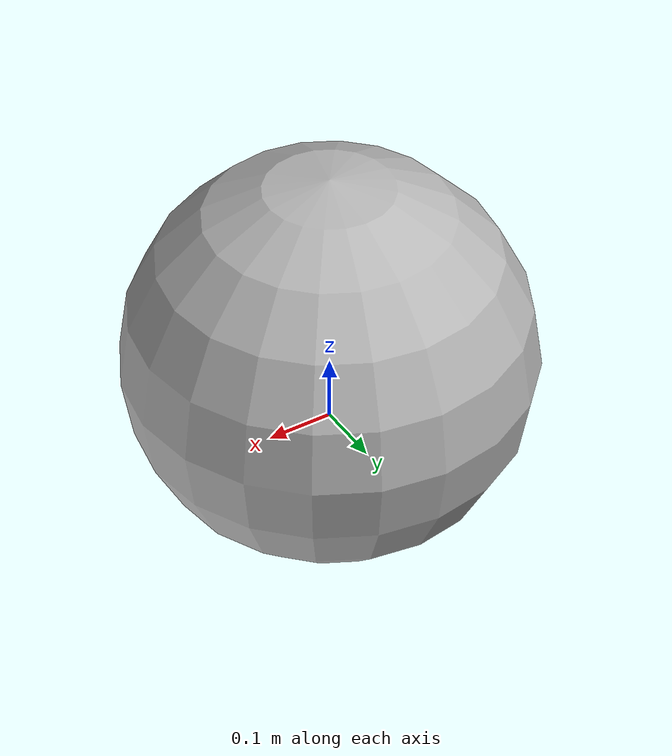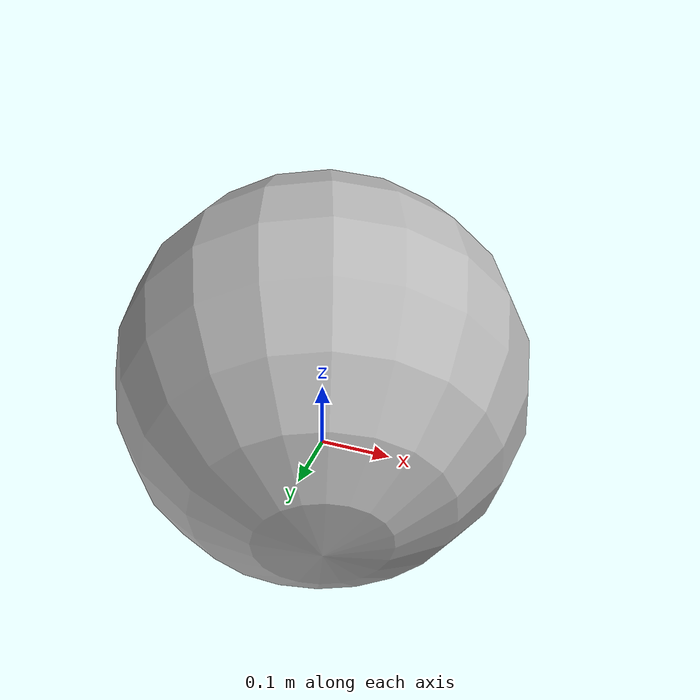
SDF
<?xml version="1.0" ?>
<sdf version="1.5">
  <model name="ball">
    <link name="link">
      <pose>0 0 0.115 0 0 1.57</pose>
      <inertial>
        <mass>0.190</mass>
        <inertia>
          <ixx>0.00058</ixx>
          <ixy>0</ixy>
          <ixz>0</ixz>
          <iyy>0.00058</iyy>
          <iyz>0</iyz>
          <izz>0.00019</izz>
        </inertia>
      </inertial>
      <collision name="collision">
        <geometry>
          <sphere>
             <radius>0.300000</radius>
          </sphere>
        </geometry>
      </collision>
      <visual name="visual">
        <geometry>
          <sphere>
             <radius>0.300000</radius>
          </sphere>
        </geometry>
        <material>
          <script>
            <uri>model://ball/materials/scripts</uri>
            <uri>model://ball/materials/textures</uri>
            <name>Ball/Diffuse</name>
          </script>
        </material>
      </visual>
    </link>
    <plugin name='usv_dynamics_wamv_dynamics_plugin' filename='libgazebo_usv_dynamics_plugin.so'>
      <bodyName>link</bodyName>
      <waterLevel>0</waterLevel>
      <waterDensity>997.8</waterDensity>
      <xDotU>0.0</xDotU>
      <yDotV>0.0</yDotV>
      <nDotR>0.0</nDotR>
      <xU>1.0</xU>
      <yV>1.0</yV>
      <zW>1.0</zW>
      <hullRadius>0.0381</hullRadius>
      <boatWidth>0.1</boatWidth>
      <boatLength>0.23</boatLength>
      <length_n>1.5</length_n>
      <wave_model>ocean_waves</wave_model>
    </plugin>
  </model>
</sdf>
